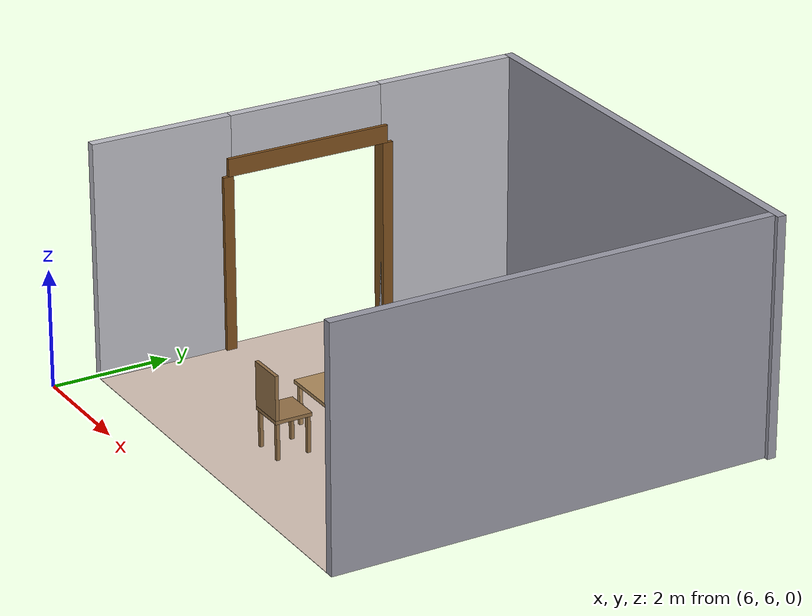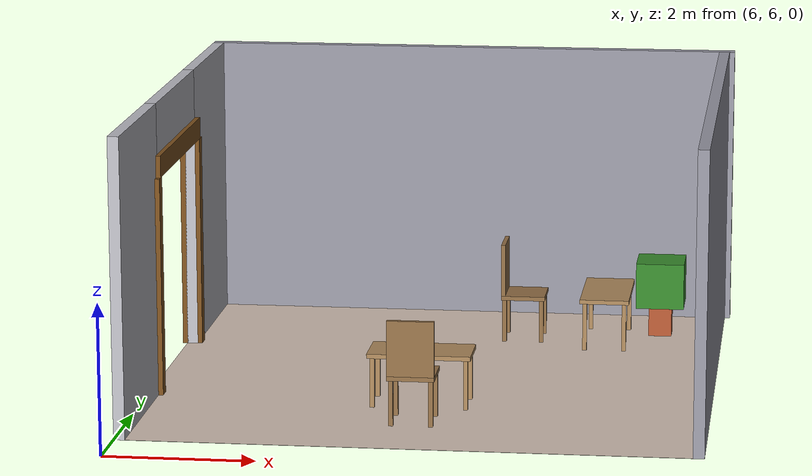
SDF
<?xml version="1.0"?>
<sdf version="1.8">
  <model name="room_e">
    <static>true</static>
    <pose>0 0 0 0 0 0</pose>
    <link name="floor_e">
      <pose>9.75 10.5 0.002 0 0 0</pose>
      <visual name="vis">
        <geometry><box><size>7.5 7.5 0.004</size></box></geometry>
        <material><ambient>0.83 0.76 0.71 1</ambient><diffuse>0.83 0.76 0.71 1</diffuse></material>
      </visual>
    </link>
    <link name="wall_e_e">
      <pose>13.575 10.5 2.0 0 0 0</pose>
      <collision name="col"><geometry><box><size>0.15 7.5 4.0</size></box></geometry></collision>
      <visual name="vis">
        <geometry><box><size>0.15 7.5 4.0</size></box></geometry>
        <material><ambient>0.6 0.6 0.65 1</ambient><diffuse>0.6 0.6 0.65 1</diffuse></material>
      </visual>
    </link>
    <link name="wall_e_n">
      <pose>9.8625 14.325 2.0 0 0 0</pose>
      <collision name="col"><geometry><box><size>7.725 0.15 4.0</size></box></geometry></collision>
      <visual name="vis">
        <geometry><box><size>7.725 0.15 4.0</size></box></geometry>
        <material><ambient>0.6 0.6 0.65 1</ambient><diffuse>0.6 0.6 0.65 1</diffuse></material>
      </visual>
    </link>
    <link name="wall_e_w_bot">
      <pose>6.075 7.95 2.0 0 0 0</pose>
      <collision name="col"><geometry><box><size>0.15 2.4000000000000004 4.0</size></box></geometry></collision>
      <visual name="vis">
        <geometry><box><size>0.15 2.4000000000000004 4.0</size></box></geometry>
        <material><ambient>0.75 0.75 0.78 1</ambient><diffuse>0.75 0.75 0.78 1</diffuse></material>
      </visual>
    </link>
    <link name="wall_e_w_top">
      <pose>6.075 13.05 2.0 0 0 0</pose>
      <collision name="col"><geometry><box><size>0.15 2.4000000000000004 4.0</size></box></geometry></collision>
      <visual name="vis">
        <geometry><box><size>0.15 2.4000000000000004 4.0</size></box></geometry>
        <material><ambient>0.75 0.75 0.78 1</ambient><diffuse>0.75 0.75 0.78 1</diffuse></material>
      </visual>
    </link>
    <link name="wall_e_w_door_top">
      <pose>6.075 10.5 3.5 0 0 0</pose>
      <collision name="col"><geometry><box><size>0.15 2.7 1.0</size></box></geometry></collision>
      <visual name="vis">
        <geometry><box><size>0.15 2.7 1.0</size></box></geometry>
        <material><ambient>0.75 0.75 0.78 1</ambient><diffuse>0.75 0.75 0.78 1</diffuse></material>
      </visual>
    </link>
    <link name="frm_ec_l">
      <pose>6.075 9.06 1.5 0 0 0</pose>
      <visual name="vis">
        <geometry><box><size>0.28 0.18 3.0</size></box></geometry>
        <material><ambient>0.5 0.32 0.12 1</ambient><diffuse>0.5 0.32 0.12 1</diffuse></material>
      </visual>
    </link>
    <link name="frm_ec_r">
      <pose>6.075 11.94 1.5 0 0 0</pose>
      <visual name="vis">
        <geometry><box><size>0.28 0.18 3.0</size></box></geometry>
        <material><ambient>0.5 0.32 0.12 1</ambient><diffuse>0.5 0.32 0.12 1</diffuse></material>
      </visual>
    </link>
    <link name="frm_ec_t">
      <pose>6.075 10.5 3.15 0 0 0</pose>
      <visual name="vis">
        <geometry><box><size>0.28 2.8800000000000003 0.3</size></box></geometry>
        <material><ambient>0.5 0.32 0.12 1</ambient><diffuse>0.5 0.32 0.12 1</diffuse></material>
      </visual>
    </link>
    <link name="desk_e1_top">
      <pose>9.75 9.0 0.72 0 0 0</pose>
      <collision name="col"><geometry><box><size>1.4 0.7 0.06</size></box></geometry></collision>
      <visual name="vis">
        <geometry><box><size>1.4 0.7 0.06</size></box></geometry>
        <material><ambient>0.68 0.54 0.36 1</ambient><diffuse>0.68 0.54 0.36 1</diffuse></material>
      </visual>
    </link>
    <link name="desk_e1_leg0">
      <pose>9.120000000000001 8.72 0.345 0 0 0</pose>
      <collision name="col"><geometry><box><size>0.06 0.06 0.69</size></box></geometry></collision>
      <visual name="vis">
        <geometry><box><size>0.06 0.06 0.69</size></box></geometry>
        <material><ambient>0.68 0.54 0.36 1</ambient><diffuse>0.68 0.54 0.36 1</diffuse></material>
      </visual>
    </link>
    <link name="desk_e1_leg1">
      <pose>9.120000000000001 9.28 0.345 0 0 0</pose>
      <collision name="col"><geometry><box><size>0.06 0.06 0.69</size></box></geometry></collision>
      <visual name="vis">
        <geometry><box><size>0.06 0.06 0.69</size></box></geometry>
        <material><ambient>0.68 0.54 0.36 1</ambient><diffuse>0.68 0.54 0.36 1</diffuse></material>
      </visual>
    </link>
    <link name="desk_e1_leg2">
      <pose>10.379999999999999 8.72 0.345 0 0 0</pose>
      <collision name="col"><geometry><box><size>0.06 0.06 0.69</size></box></geometry></collision>
      <visual name="vis">
        <geometry><box><size>0.06 0.06 0.69</size></box></geometry>
        <material><ambient>0.68 0.54 0.36 1</ambient><diffuse>0.68 0.54 0.36 1</diffuse></material>
      </visual>
    </link>
    <link name="desk_e1_leg3">
      <pose>10.379999999999999 9.28 0.345 0 0 0</pose>
      <collision name="col"><geometry><box><size>0.06 0.06 0.69</size></box></geometry></collision>
      <visual name="vis">
        <geometry><box><size>0.06 0.06 0.69</size></box></geometry>
        <material><ambient>0.68 0.54 0.36 1</ambient><diffuse>0.68 0.54 0.36 1</diffuse></material>
      </visual>
    </link>
    <link name="chair_e1_seat">
      <pose>9.75 8.1 0.65 0 0 0</pose>
      <collision name="col"><geometry><box><size>0.63 0.63 0.06</size></box></geometry></collision>
      <visual name="vis">
        <geometry><box><size>0.63 0.63 0.06</size></box></geometry>
        <material><ambient>0.58 0.44 0.28 1</ambient><diffuse>0.58 0.44 0.28 1</diffuse></material>
      </visual>
    </link>
    <link name="chair_e1_bk">
      <pose>9.75 7.8149999999999995 1.0550000000000002 0 0 0</pose>
      <collision name="col"><geometry><box><size>0.63 0.06 0.75</size></box></geometry></collision>
      <visual name="vis">
        <geometry><box><size>0.63 0.06 0.75</size></box></geometry>
        <material><ambient>0.58 0.44 0.28 1</ambient><diffuse>0.58 0.44 0.28 1</diffuse></material>
      </visual>
    </link>
    <link name="chair_e1_leg0">
      <pose>9.485 7.835 0.31000000000000005 0 0 0</pose>
      <collision name="col"><geometry><box><size>0.06 0.06 0.6200000000000001</size></box></geometry></collision>
      <visual name="vis">
        <geometry><box><size>0.06 0.06 0.6200000000000001</size></box></geometry>
        <material><ambient>0.58 0.44 0.28 1</ambient><diffuse>0.58 0.44 0.28 1</diffuse></material>
      </visual>
    </link>
    <link name="chair_e1_leg1">
      <pose>9.485 8.365 0.31000000000000005 0 0 0</pose>
      <collision name="col"><geometry><box><size>0.06 0.06 0.6200000000000001</size></box></geometry></collision>
      <visual name="vis">
        <geometry><box><size>0.06 0.06 0.6200000000000001</size></box></geometry>
        <material><ambient>0.58 0.44 0.28 1</ambient><diffuse>0.58 0.44 0.28 1</diffuse></material>
      </visual>
    </link>
    <link name="chair_e1_leg2">
      <pose>10.015 7.835 0.31000000000000005 0 0 0</pose>
      <collision name="col"><geometry><box><size>0.06 0.06 0.6200000000000001</size></box></geometry></collision>
      <visual name="vis">
        <geometry><box><size>0.06 0.06 0.6200000000000001</size></box></geometry>
        <material><ambient>0.58 0.44 0.28 1</ambient><diffuse>0.58 0.44 0.28 1</diffuse></material>
      </visual>
    </link>
    <link name="chair_e1_leg3">
      <pose>10.015 8.365 0.31000000000000005 0 0 0</pose>
      <collision name="col"><geometry><box><size>0.06 0.06 0.6200000000000001</size></box></geometry></collision>
      <visual name="vis">
        <geometry><box><size>0.06 0.06 0.6200000000000001</size></box></geometry>
        <material><ambient>0.58 0.44 0.28 1</ambient><diffuse>0.58 0.44 0.28 1</diffuse></material>
      </visual>
    </link>
    <link name="desk_e2_top">
      <pose>12.0 12.75 0.72 0 0 0</pose>
      <collision name="col"><geometry><box><size>0.7 1.4 0.06</size></box></geometry></collision>
      <visual name="vis">
        <geometry><box><size>0.7 1.4 0.06</size></box></geometry>
        <material><ambient>0.68 0.54 0.36 1</ambient><diffuse>0.68 0.54 0.36 1</diffuse></material>
      </visual>
    </link>
    <link name="desk_e2_leg0">
      <pose>11.72 12.120000000000001 0.345 0 0 0</pose>
      <collision name="col"><geometry><box><size>0.06 0.06 0.69</size></box></geometry></collision>
      <visual name="vis">
        <geometry><box><size>0.06 0.06 0.69</size></box></geometry>
        <material><ambient>0.68 0.54 0.36 1</ambient><diffuse>0.68 0.54 0.36 1</diffuse></material>
      </visual>
    </link>
    <link name="desk_e2_leg1">
      <pose>11.72 13.379999999999999 0.345 0 0 0</pose>
      <collision name="col"><geometry><box><size>0.06 0.06 0.69</size></box></geometry></collision>
      <visual name="vis">
        <geometry><box><size>0.06 0.06 0.69</size></box></geometry>
        <material><ambient>0.68 0.54 0.36 1</ambient><diffuse>0.68 0.54 0.36 1</diffuse></material>
      </visual>
    </link>
    <link name="desk_e2_leg2">
      <pose>12.28 12.120000000000001 0.345 0 0 0</pose>
      <collision name="col"><geometry><box><size>0.06 0.06 0.69</size></box></geometry></collision>
      <visual name="vis">
        <geometry><box><size>0.06 0.06 0.69</size></box></geometry>
        <material><ambient>0.68 0.54 0.36 1</ambient><diffuse>0.68 0.54 0.36 1</diffuse></material>
      </visual>
    </link>
    <link name="desk_e2_leg3">
      <pose>12.28 13.379999999999999 0.345 0 0 0</pose>
      <collision name="col"><geometry><box><size>0.06 0.06 0.69</size></box></geometry></collision>
      <visual name="vis">
        <geometry><box><size>0.06 0.06 0.69</size></box></geometry>
        <material><ambient>0.68 0.54 0.36 1</ambient><diffuse>0.68 0.54 0.36 1</diffuse></material>
      </visual>
    </link>
    <link name="chair_e2_seat">
      <pose>10.8 12.75 0.65 0 0 0</pose>
      <collision name="col"><geometry><box><size>0.63 0.63 0.06</size></box></geometry></collision>
      <visual name="vis">
        <geometry><box><size>0.63 0.63 0.06</size></box></geometry>
        <material><ambient>0.58 0.44 0.28 1</ambient><diffuse>0.58 0.44 0.28 1</diffuse></material>
      </visual>
    </link>
    <link name="chair_e2_bk">
      <pose>10.515 12.75 1.0550000000000002 0 0 0</pose>
      <collision name="col"><geometry><box><size>0.06 0.63 0.75</size></box></geometry></collision>
      <visual name="vis">
        <geometry><box><size>0.06 0.63 0.75</size></box></geometry>
        <material><ambient>0.58 0.44 0.28 1</ambient><diffuse>0.58 0.44 0.28 1</diffuse></material>
      </visual>
    </link>
    <link name="chair_e2_leg0">
      <pose>10.535 12.485 0.31000000000000005 0 0 0</pose>
      <collision name="col"><geometry><box><size>0.06 0.06 0.6200000000000001</size></box></geometry></collision>
      <visual name="vis">
        <geometry><box><size>0.06 0.06 0.6200000000000001</size></box></geometry>
        <material><ambient>0.58 0.44 0.28 1</ambient><diffuse>0.58 0.44 0.28 1</diffuse></material>
      </visual>
    </link>
    <link name="chair_e2_leg1">
      <pose>10.535 13.015 0.31000000000000005 0 0 0</pose>
      <collision name="col"><geometry><box><size>0.06 0.06 0.6200000000000001</size></box></geometry></collision>
      <visual name="vis">
        <geometry><box><size>0.06 0.06 0.6200000000000001</size></box></geometry>
        <material><ambient>0.58 0.44 0.28 1</ambient><diffuse>0.58 0.44 0.28 1</diffuse></material>
      </visual>
    </link>
    <link name="chair_e2_leg2">
      <pose>11.065000000000001 12.485 0.31000000000000005 0 0 0</pose>
      <collision name="col"><geometry><box><size>0.06 0.06 0.6200000000000001</size></box></geometry></collision>
      <visual name="vis">
        <geometry><box><size>0.06 0.06 0.6200000000000001</size></box></geometry>
        <material><ambient>0.58 0.44 0.28 1</ambient><diffuse>0.58 0.44 0.28 1</diffuse></material>
      </visual>
    </link>
    <link name="chair_e2_leg3">
      <pose>11.065000000000001 13.015 0.31000000000000005 0 0 0</pose>
      <collision name="col"><geometry><box><size>0.06 0.06 0.6200000000000001</size></box></geometry></collision>
      <visual name="vis">
        <geometry><box><size>0.06 0.06 0.6200000000000001</size></box></geometry>
        <material><ambient>0.58 0.44 0.28 1</ambient><diffuse>0.58 0.44 0.28 1</diffuse></material>
      </visual>
    </link>
    <link name="plant_e_pot">
      <pose>12.75 13.2 0.225 0 0 0</pose>
      <collision name="col"><geometry><box><size>0.33 0.33 0.45</size></box></geometry></collision>
      <visual name="vis">
        <geometry><box><size>0.33 0.33 0.45</size></box></geometry>
        <material><ambient>0.72 0.35 0.2 1</ambient><diffuse>0.72 0.35 0.2 1</diffuse></material>
      </visual>
    </link>
    <link name="plant_e_leaves">
      <pose>12.75 13.2 0.78 0 0 0</pose>
      <collision name="col"><geometry><box><size>0.69 0.69 0.66</size></box></geometry></collision>
      <visual name="vis">
        <geometry><box><size>0.69 0.69 0.66</size></box></geometry>
        <material><ambient>0.22 0.55 0.18 1</ambient><diffuse>0.22 0.55 0.18 1</diffuse></material>
      </visual>
    </link>
  </model>
</sdf>
